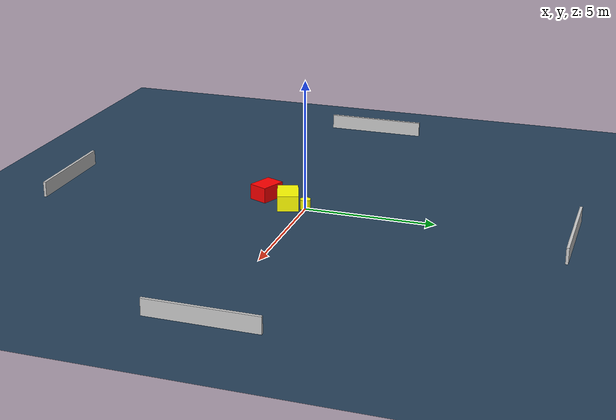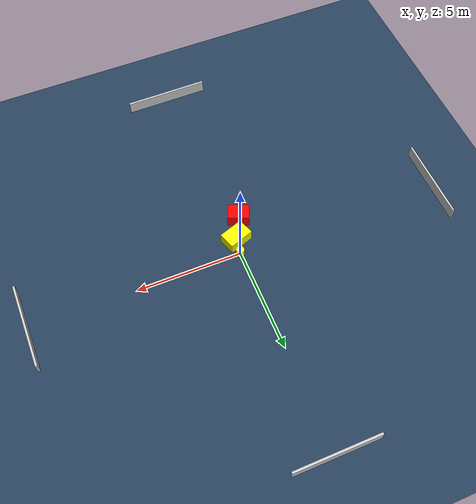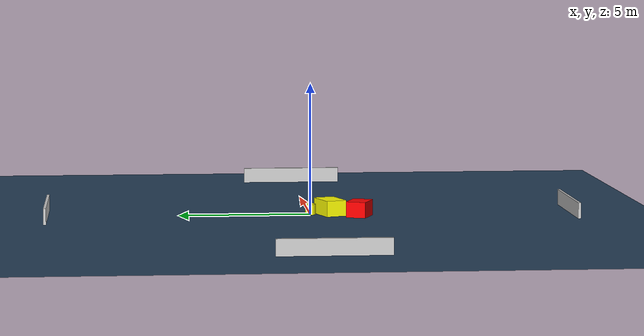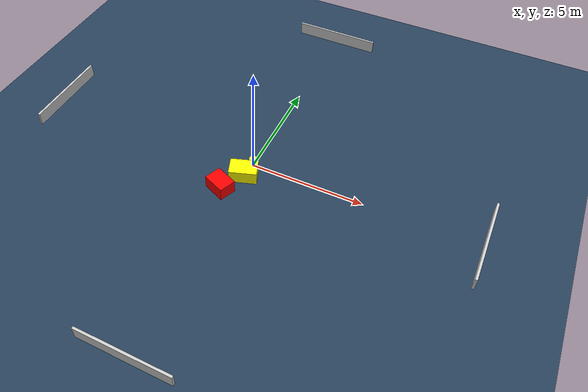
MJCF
<?xml version="1.0" ?>
<mujoco model="generated_environment">
  <option timestep="0.01" integrator="RK4" cone="elliptic"/>
  <default>
    <geom density="1"/>
  </default>
  <asset>
    <texture builtin="gradient" height="3072" name="skybox" rgb1="0.3 0.5 0.7" rgb2="0 0 0" type="skybox" width="512"/>
    <texture builtin="checker" height="300" name="groundplane" rgb1="0.2 0.3 0.4" rgb2="0.1 0.2 0.3" type="2d" width="300"/>
    <material name="groundplane" reflectance="0.2" texrepeat="5 5" texture="groundplane"/>
  </asset>
  <worldbody>
    <light dir="0 0 -1" directional="true" pos="0 0 1.5"/>
    <geom condim="3" friction="0.5 0.005 0.001" material="groundplane" name="floor" pos="0 0 0" size="0 0 0.05" type="plane"/>
    <body name="walls">
      <geom name="wall_1" condim="4" pos="-10.0 0.0 0.3" rgba="0.800000011920929 0.800000011920929 0.800000011920929 1.0" size="0.05 2.0 0.3" type="box"/>
      <geom name="wall_2" condim="4" pos="10.0 0.0 0.3" rgba="0.800000011920929 0.800000011920929 0.800000011920929 1.0" size="0.05 2.0 0.3" type="box"/>
      <geom name="wall_3" condim="4" pos="0.0 -10.0 0.3" rgba="0.800000011920929 0.800000011920929 0.800000011920929 1.0" size="2.0 0.05 0.3" type="box"/>
      <geom name="wall_4" condim="4" pos="0.0 10.0 0.3" rgba="0.800000011920929 0.800000011920929 0.800000011920929 1.0" size="2.0 0.05 0.3" type="box"/>
    </body>
    <body name="robot">
      <joint name="joint_x" type="slide" pos="0 0 0" axis="1 0 0"/>
      <joint name="joint_y" type="slide" pos="0 0 0" axis="0 1 0"/>
      <geom name="robot" type="cylinder" pos="0.0 0.0 0.2" size="0.2 0.2 0.0" mass="5.0" friction="1.0 0.005 0.0001" condim="4" rgba="1.0 1.0 0.0 1.0"/>
    </body>
    <body name="obstacle_1_movable">
      <geom name="obstacle_1_movable" condim="4" pos="-0.11130729340162919 -0.7460619911364903 0.3" euler="0 0 199.20819790878002" friction="0.0 0.005 0.001" rgba="1.0 1.0 0.0 1.0" size="0.6024745320526151 0.40100754295795765 0.3" type="box" mass="0.1"/>
      <joint type="free"/>
    </body>
    <body name="obstacle_2_static">
      <geom name="obstacle_2_static" condim="4" pos="-0.6672618816270348 -1.8149964681712643 0.3" euler="0 0 247.0624620877255" friction="0.0 0.005 0.001" rgba="1.0 0.0 0.0 1.0" size="0.3770920009701889 0.5038779957375328 0.3" type="box"/>
    </body>
  </worldbody>
  <actuator>
    <motor name="actuator_x" joint="joint_x" gear="1" ctrlrange="-1 1"/>
    <motor name="actuator_y" joint="joint_y" gear="1" ctrlrange="-1 1"/>
  </actuator>
</mujoco>
